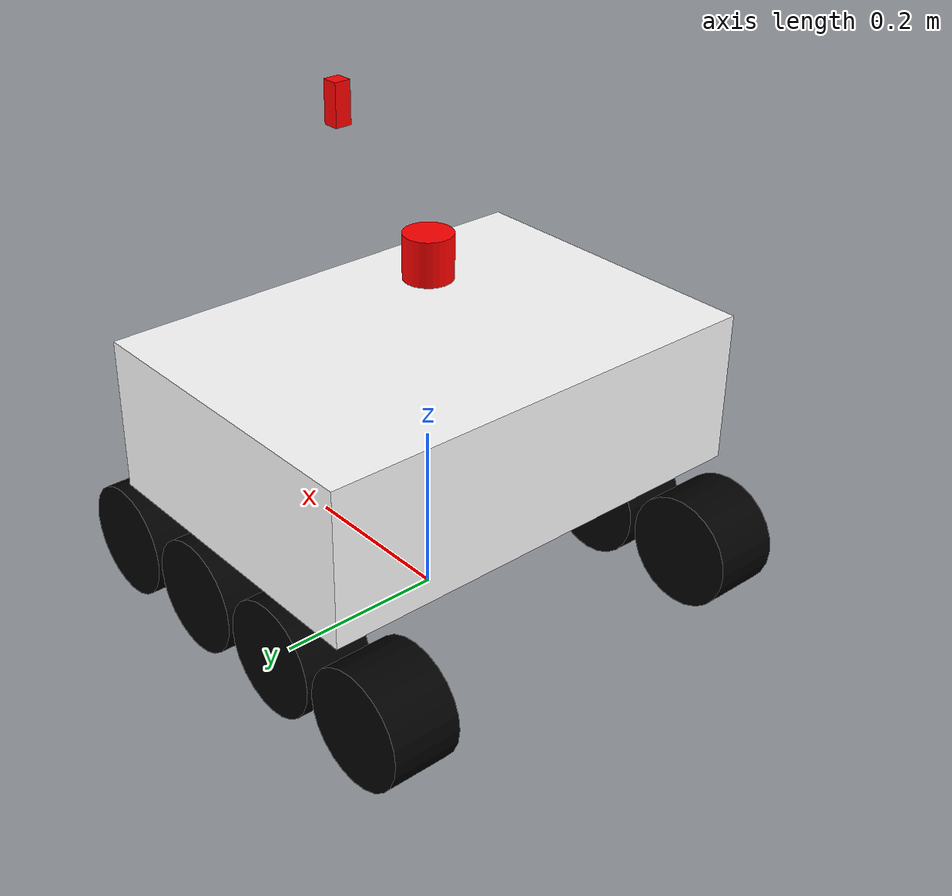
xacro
<?xml version="1.0"?>
<robot xmlns:xacro="http://www.ros.org/wiki/xacro" name="mirs260x">
	<!-- Define robot constants -->
	<xacro:property name="base_length" value="0.379"/>
	<xacro:property name="base_width" value="0.545"/>
	<xacro:property name="base_height" value="0.178"/>

	<xacro:property name="wheel_radius" value="0.0665"/>
	<xacro:property name="wheel_width" value="0.08"/>
	<xacro:property name="wheel_zgap" value="0.02"/>

	<xacro:property name="laser_zoff" value="0.06"/>
	<xacro:property name="laser_height" value="0.051"/>
	<xacro:property name="laser_radius" value="0.0278"/>

	<xacro:property name="caster_radius" value="0.0665"/>

	<material name="black">
		<color rgba="0 0 0 1"/>
	</material>
	<material name="white">
		<color rgba="1 1 1 1"/>
	</material>
	<material name="red">
		<color rgba="1 0 0 1"/>
	</material>

	<!--==============================================================
		base_footprint: MIRSの前後左右の回転を無視したときの位置（地面）
	==============================================================-->
	<link name="base_footprint"/>

	<!--==============================================================
		base_link: MIRS本体（コンテナ）
	==============================================================-->
	<link name="base_link">
		<visual>
			<geometry>
				<box size="${base_length} ${base_width} ${base_height}"/>
			</geometry>
			<material name="white"/>
			<origin xyz="0 0 0"/>
		</visual>
		<collision>
			<geometry>
				<box size="${base_length} ${base_width} ${base_height}"/>
			</geometry>
		</collision>
		<inertial>
			<mass value="10"/>
			<inertia ixx="0.586" ixy="0" ixz="0" iyy="0.313" iyz="0" izz="0.786"/>
		</inertial>
	</link>

	<joint name="base_joint" type="fixed">
		<parent link="base_footprint"/>
		<child link="base_link"/>
		<origin xyz="0 0 ${((wheel_radius*2)+wheel_zgap+(base_height/2))}" rpy="0 0 0"/>
	</joint>

	<xacro:macro name="wheel" params="prefix y_reflect x_position">
		<link name="${prefix}_wheel">
			<visual>
				<geometry>
					<cylinder length="${wheel_width}" radius="${wheel_radius}"/>
				</geometry>
				<material name="black"/>
				<origin rpy="${pi/2} 0 0"/>
			</visual>
			<collision>
				<geometry>
					<cylinder length="${wheel_width}" radius="${wheel_radius}"/>
				</geometry>
				<origin rpy="${pi/2} 0 0"/>
			</collision>
			<inertial>
				<mass value="5.7"/>
				<inertia ixx="0.0114" ixy="0" ixz="0" iyy="0.0979" iyz="0" izz="0.0925"/>
			</inertial>
		</link>
		<joint name="${prefix}_wheel_joint" type="continuous">
			<parent link="base_link"/>
			<child link="${prefix}_wheel"/>
			<origin xyz="${x_position} ${y_reflect*(base_width/2-wheel_width/2)} ${-(wheel_radius+wheel_zgap+(base_height/2))}"/>
			<axis xyz="0 1 0"/>
		</joint>
	</xacro:macro>

	<xacro:wheel prefix="left_1" y_reflect="1" x_position="0.21"/>
	<xacro:wheel prefix="left_2" y_reflect="1" x_position="0.07"/>
	<xacro:wheel prefix="left_3" y_reflect="1" x_position="-0.07"/>
	<xacro:wheel prefix="left_4" y_reflect="1" x_position="-0.21"/>
	<xacro:wheel prefix="right_1" y_reflect="-1" x_position="0.21"/>
	<xacro:wheel prefix="right_2" y_reflect="-1" x_position="0.07"/>
	<xacro:wheel prefix="right_3" y_reflect="-1" x_position="-0.07"/>
	<xacro:wheel prefix="right_4" y_reflect="-1" x_position="-0.21"/>

	<!--==============================================================
		laser：LIDAR のフレーム
	==============================================================-->
	<link name="laser">
		<visual>
			<geometry>
				<cylinder length="${laser_height}" radius="${laser_radius}"/>
			</geometry>
			<material name="red"/>
		</visual>
		<collision>
			<geometry>
				<cylinder length="${laser_height}" radius="${laser_radius}"/>
			</geometry>
		</collision>
		<inertial>
			<mass value="0.1"/>
			<inertia ixx="0.0001" ixy="0" ixz="0" iyy="0.0001" iyz="0" izz="0.0001"/>
		</inertial>
	</link>
	<joint name="laser_joint" type="fixed">
		<parent link="base_link"/>
		<child link="laser"/>
		<origin xyz="0 0 ${laser_zoff+base_height/2+laser_height/2}" rpy="0 0 0"/>
	</joint>

	<!--==============================================================
		camera：カメラ本体
	==============================================================-->
	<link name="camera">
		<visual>
			<geometry>
				<box size="0.02 0.05 0.02"/>
			</geometry>
			<material name="red"/>
		</visual>
		<collision>
			<geometry>
				<box size="0.02 0.05 0.02"/>
			</geometry>
		</collision>
		<inertial>
			<mass value="0.1"/>
			<inertia ixx="0.0001" ixy="0" ixz="0" iyy="0.0001" iyz="0" izz="0.0001"/>
		</inertial>
	</link>
	<joint name="camera_joint" type="fixed">
		<parent link="base_link"/>
		<child link="camera"/>
		<origin xyz="0.15 0 0.3" rpy="-1.5707 0 -1.5707"/>
	</joint>
</robot>
